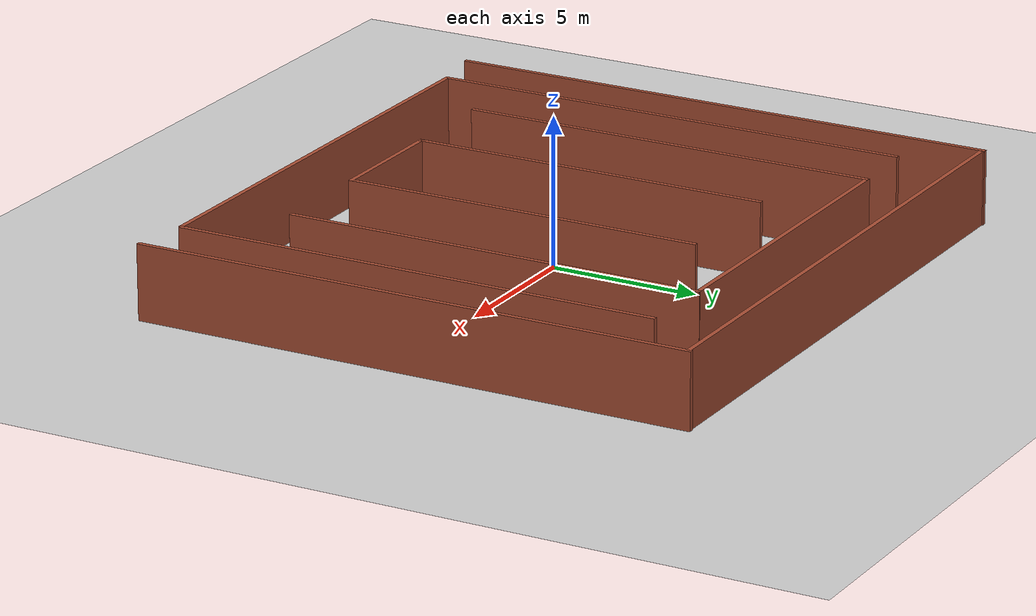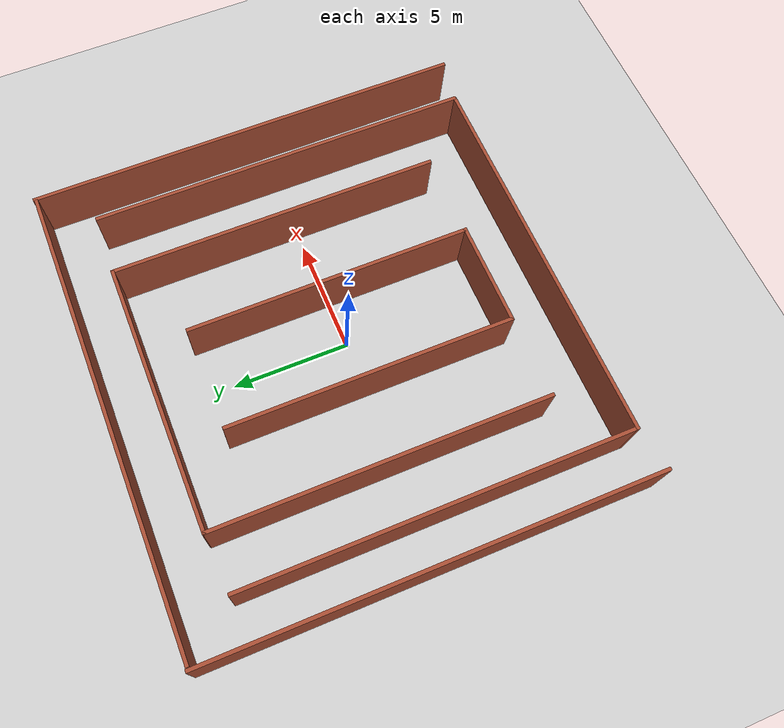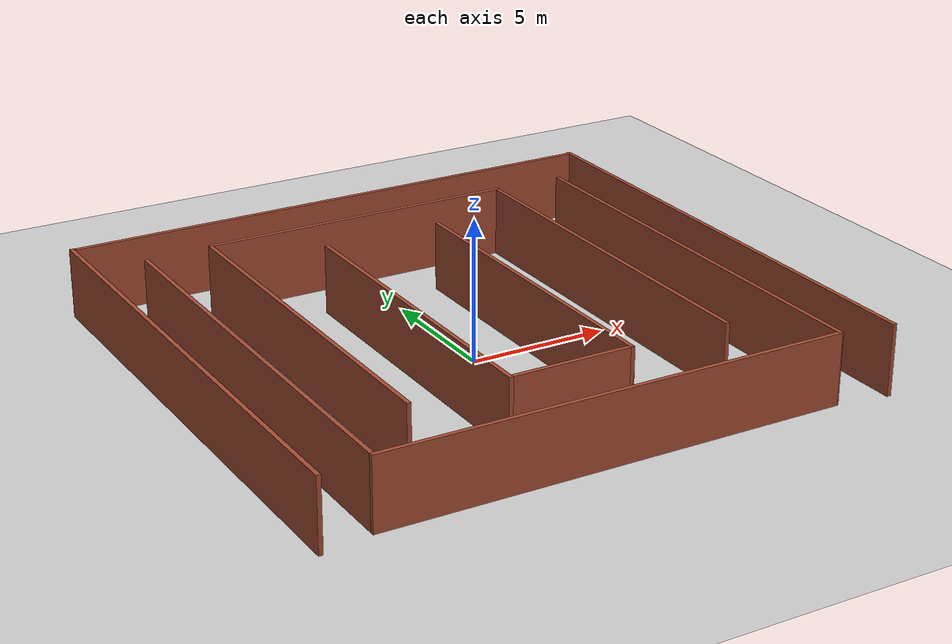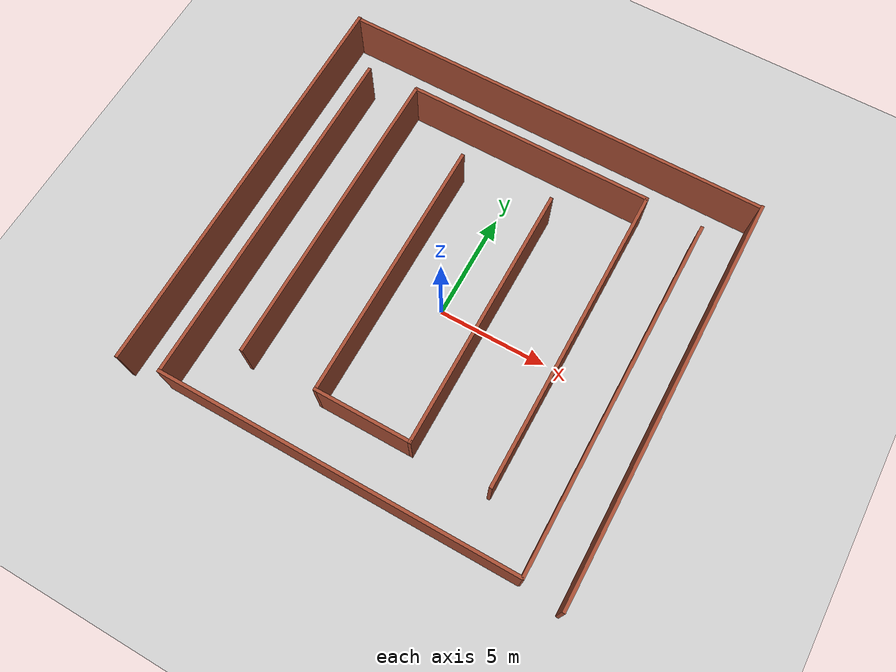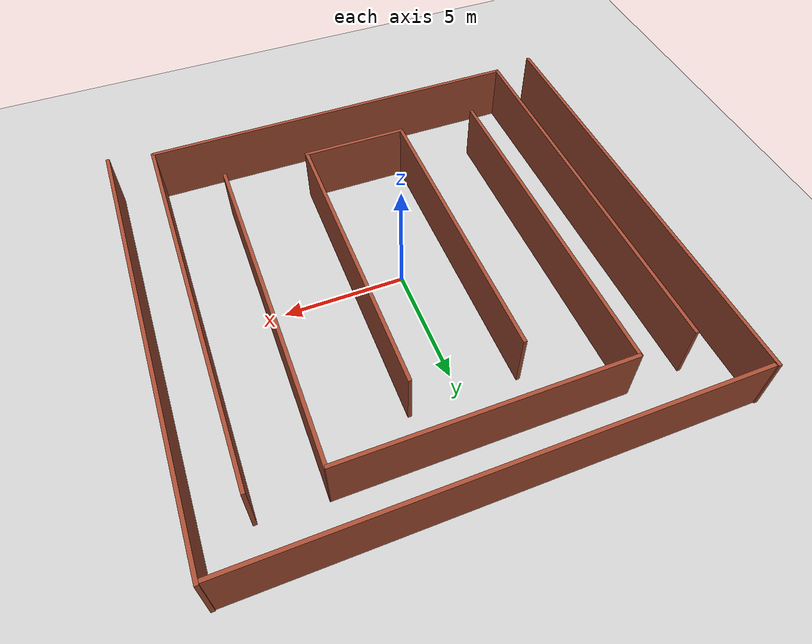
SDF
<?xml version='1.0'?>
<sdf version='1.6'>
   <world name="default">

    <include>
      <uri>model://ground_plane</uri>
    </include>

    <!-- Global light source -->
    <include>
      <uri>model://sun</uri>
    </include>

   <!-- Focus camera on tall pendulum -->
    <gui fullscreen='0'>
      <camera name='user_camera'>
        <pose>4.927360 -4.376610 3.740080 0.000000 0.275643 2.356190</pose>
        <view_controller>orbit</view_controller>
      </camera>
    </gui>

  <model name='maze.world'>
    <pose frame=''>0.038009 0.627373 0 0 -0 0</pose>
    <link name='Wall_0'>
      <collision name='Wall_0_Collision'>
        <geometry>
          <box>
            <size>20 0.15 2.5</size>
          </box>
        </geometry>
        <pose frame=''>0 0 1.25 0 -0 0</pose>
      </collision>
      <visual name='Wall_0_Visual'>
        <pose frame=''>0 0 1.25 0 -0 0</pose>
        <geometry>
          <box>
            <size>20 0.15 2.5</size>
          </box>
        </geometry>
        <material>
          <script>
            <uri>file://media/materials/scripts/gazebo.material</uri>
            <name>Gazebo/Bricks</name>
          </script>
          <ambient>1 1 1 1</ambient>
        </material>
        <meta>
          <layer>0</layer>
        </meta>
      </visual>
      <pose frame=''>0.036095 9.38939 0 0 -0 3.14159</pose>
    </link>
    <link name='Wall_12'>
      <collision name='Wall_12_Collision'>
        <geometry>
          <box>
            <size>11.5 0.15 2.5</size>
          </box>
        </geometry>
        <pose frame=''>0 0 1.25 0 -0 0</pose>
      </collision>
      <visual name='Wall_12_Visual'>
        <pose frame=''>0 0 1.25 0 -0 0</pose>
        <geometry>
          <box>
            <size>11.5 0.15 2.5</size>
          </box>
        </geometry>
        <material>
          <script>
            <uri>file://media/materials/scripts/gazebo.material</uri>
            <name>Gazebo/Bricks</name>
          </script>
          <ambient>1 1 1 1</ambient>
        </material>
        <meta>
          <layer>0</layer>
        </meta>
      </visual>
      <pose frame=''>-0.122316 7.37975 0 0 -0 0</pose>
    </link>
    <link name='Wall_15'>
      <collision name='Wall_15_Collision'>
        <geometry>
          <box>
            <size>14.25 0.15 2.5</size>
          </box>
        </geometry>
        <pose frame=''>0 0 1.25 0 -0 0</pose>
      </collision>
      <visual name='Wall_15_Visual'>
        <pose frame=''>0 0 1.25 0 -0 0</pose>
        <geometry>
          <box>
            <size>14.25 0.15 2.5</size>
          </box>
        </geometry>
        <material>
          <script>
            <uri>file://media/materials/scripts/gazebo.material</uri>
            <name>Gazebo/Bricks</name>
          </script>
          <ambient>1 1 1 1</ambient>
        </material>
        <meta>
          <layer>0</layer>
        </meta>
      </visual>
      <pose frame=''>5.58348 0.328138 0 0 -0 1.5708</pose>
    </link>
    <link name='Wall_17'>
      <collision name='Wall_17_Collision'>
        <geometry>
          <box>
            <size>16.5 0.15 2.5</size>
          </box>
        </geometry>
        <pose frame=''>0 0 1.25 0 -0 0</pose>
      </collision>
      <visual name='Wall_17_Visual'>
        <pose frame=''>0 0 1.25 0 -0 0</pose>
        <geometry>
          <box>
            <size>16.5 0.15 2.5</size>
          </box>
        </geometry>
        <material>
          <script>
            <uri>file://media/materials/scripts/gazebo.material</uri>
            <name>Gazebo/Bricks</name>
          </script>
          <ambient>1 1 1 1</ambient>
        </material>
        <meta>
          <layer>0</layer>
        </meta>
      </visual>
      <pose frame=''>8.19693 -0.92431 0 0 -0 -1.5708</pose>
    </link>
    <link name='Wall_19'>
      <collision name='Wall_19_Collision'>
        <geometry>
          <box>
            <size>14.25 0.15 2.5</size>
          </box>
        </geometry>
        <pose frame=''>0 0 1.25 0 -0 0</pose>
      </collision>
      <visual name='Wall_19_Visual'>
        <pose frame=''>0 0 1.25 0 -0 0</pose>
        <geometry>
          <box>
            <size>14.25 0.15 2.5</size>
          </box>
        </geometry>
        <material>
          <script>
            <uri>file://media/materials/scripts/gazebo.material</uri>
            <name>Gazebo/Bricks</name>
          </script>
          <ambient>1 1 1 1</ambient>
        </material>
        <meta>
          <layer>0</layer>
        </meta>
      </visual>
      <pose frame=''>-5.8299 0.295748 0 0 -0 1.5708</pose>
    </link>
    <link name='Wall_2'>
      <collision name='Wall_2_Collision'>
        <geometry>
          <box>
            <size>19 0.15 2.5</size>
          </box>
        </geometry>
        <pose frame=''>0 0 1.25 0 -0 0</pose>
      </collision>
      <visual name='Wall_2_Visual'>
        <pose frame=''>0 0 1.25 0 -0 0</pose>
        <geometry>
          <box>
            <size>19 0.15 2.5</size>
          </box>
        </geometry>
        <material>
          <script>
            <uri>file://media/materials/scripts/gazebo.material</uri>
            <name>Gazebo/Bricks</name>
          </script>
          <ambient>1 1 1 1</ambient>
        </material>
        <meta>
          <layer>0</layer>
        </meta>
      </visual>
      <pose frame=''>-10.0646 -0.002449 0 0 -0 1.5708</pose>
    </link>
    <link name='Wall_21'>
      <collision name='Wall_21_Collision'>
        <geometry>
          <box>
            <size>12.25 0.15 2.5</size>
          </box>
        </geometry>
        <pose frame=''>0 0 1.25 0 -0 0</pose>
      </collision>
      <visual name='Wall_21_Visual'>
        <pose frame=''>0 0 1.25 0 -0 0</pose>
        <geometry>
          <box>
            <size>12.25 0.15 2.5</size>
          </box>
        </geometry>
        <material>
          <script>
            <uri>file://media/materials/scripts/gazebo.material</uri>
            <name>Gazebo/Bricks</name>
          </script>
          <ambient>1 1 1 1</ambient>
        </material>
        <meta>
          <layer>0</layer>
        </meta>
      </visual>
      <pose frame=''>-2.36023 -0.682763 0 0 -0 -1.5708</pose>
    </link>
    <link name='Wall_22'>
      <collision name='Wall_22_Collision'>
        <geometry>
          <box>
            <size>4.5 0.15 2.5</size>
          </box>
        </geometry>
        <pose frame=''>0 0 1.25 0 -0 0</pose>
      </collision>
      <visual name='Wall_22_Visual'>
        <pose frame=''>0 0 1.25 0 -0 0</pose>
        <geometry>
          <box>
            <size>4.5 0.15 2.5</size>
          </box>
        </geometry>
        <material>
          <script>
            <uri>file://media/materials/scripts/gazebo.material</uri>
            <name>Gazebo/Bricks</name>
          </script>
          <ambient>1 1 1 1</ambient>
        </material>
        <meta>
          <layer>0</layer>
        </meta>
      </visual>
      <pose frame=''>-0.18523 -6.73276 0 0 -0 0</pose>
    </link>
    <link name='Wall_23'>
      <collision name='Wall_23_Collision'>
        <geometry>
          <box>
            <size>12.25 0.15 2.5</size>
          </box>
        </geometry>
        <pose frame=''>0 0 1.25 0 -0 0</pose>
      </collision>
      <visual name='Wall_23_Visual'>
        <pose frame=''>0 0 1.25 0 -0 0</pose>
        <geometry>
          <box>
            <size>12.25 0.15 2.5</size>
          </box>
        </geometry>
        <material>
          <script>
            <uri>file://media/materials/scripts/gazebo.material</uri>
            <name>Gazebo/Bricks</name>
          </script>
          <ambient>1 1 1 1</ambient>
        </material>
        <meta>
          <layer>0</layer>
        </meta>
      </visual>
      <pose frame=''>1.98977 -0.682763 0 0 -0 1.5708</pose>
    </link>
    <link name='Wall_4'>
      <collision name='Wall_4_Collision'>
        <geometry>
          <box>
            <size>19 0.15 2.5</size>
          </box>
        </geometry>
        <pose frame=''>0 0 1.25 0 -0 0</pose>
      </collision>
      <visual name='Wall_4_Visual'>
        <pose frame=''>0 0 1.25 0 -0 0</pose>
        <geometry>
          <box>
            <size>19 0.15 2.5</size>
          </box>
        </geometry>
        <material>
          <script>
            <uri>file://media/materials/scripts/gazebo.material</uri>
            <name>Gazebo/Bricks</name>
          </script>
          <ambient>1 1 1 1</ambient>
        </material>
        <meta>
          <layer>0</layer>
        </meta>
      </visual>
      <pose frame=''>10.0646 0.002448 0 0 -0 1.5708</pose>
    </link>
    <link name='Wall_6'>
      <collision name='Wall_6_Collision'>
        <geometry>
          <box>
            <size>16.5 0.15 2.5</size>
          </box>
        </geometry>
        <pose frame=''>0 0 1.25 0 -0 0</pose>
      </collision>
      <visual name='Wall_6_Visual'>
        <pose frame=''>0 0 1.25 0 -0 0</pose>
        <geometry>
          <box>
            <size>16.5 0.15 2.5</size>
          </box>
        </geometry>
        <material>
          <script>
            <uri>file://media/materials/scripts/gazebo.material</uri>
            <name>Gazebo/Bricks</name>
          </script>
          <ambient>1 1 1 1</ambient>
        </material>
        <meta>
          <layer>0</layer>
        </meta>
      </visual>
      <pose frame=''>-0.042345 -9.12738 0 0 -0 3.14159</pose>
    </link>
    <link name='Wall_7'>
      <collision name='Wall_7_Collision'>
        <geometry>
          <box>
            <size>16.4308 0.15 2.5</size>
          </box>
        </geometry>
        <pose frame=''>0 0 1.25 0 -0 0</pose>
      </collision>
      <visual name='Wall_7_Visual'>
        <pose frame=''>0 0 1.25 0 -0 0</pose>
        <geometry>
          <box>
            <size>16.4308 0.15 2.5</size>
          </box>
        </geometry>
        <material>
          <script>
            <uri>file://media/materials/scripts/gazebo.material</uri>
            <name>Gazebo/Bricks</name>
          </script>
          <ambient>1 1 1 1</ambient>
        </material>
        <meta>
          <layer>0</layer>
        </meta>
      </visual>
      <pose frame=''>-8.21734 -0.917794 0 0 -0 1.5708</pose>
    </link>
    <static>1</static>
  </model>
</world>
</sdf>
